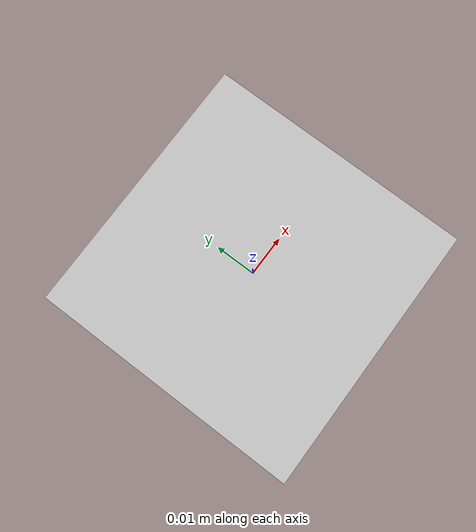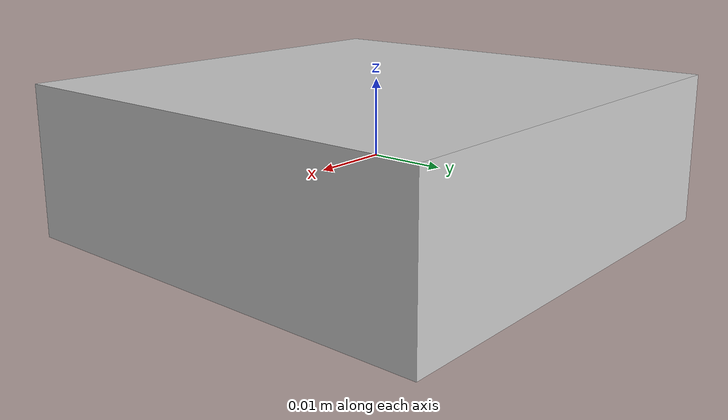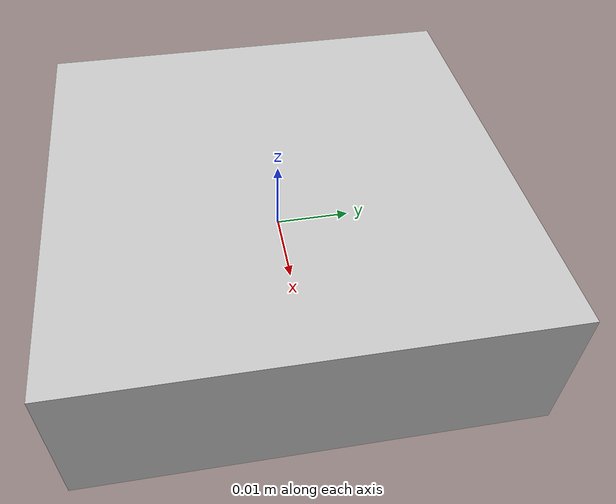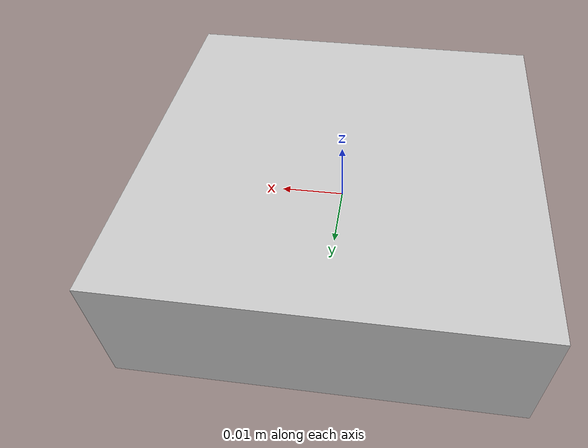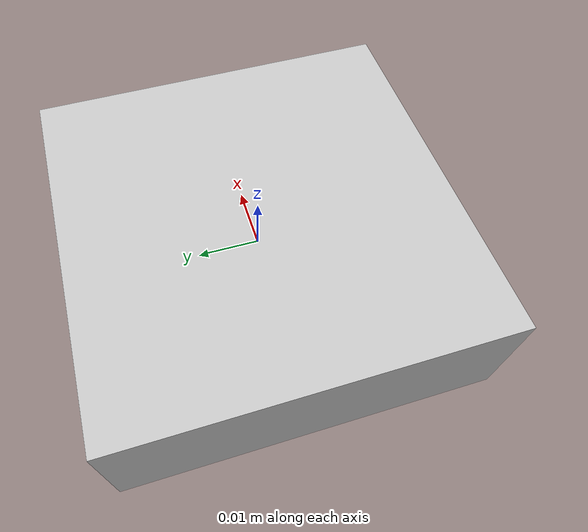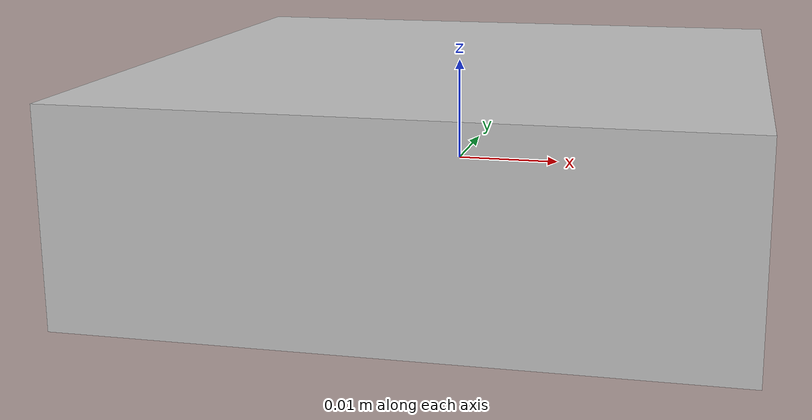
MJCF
<?xml version='1.0' encoding='utf-8'?>
<mujoco model="manipulator_on_base">
  <compiler meshdir="meshes" autolimits="true" />
  <asset>
    <mesh name="manipulator_on_base" file="manipulator_on_base.stl" />
  </asset>
  <worldbody>
    <body name="manipulator_on_base" pos="0.000000 0.000000 0.000000">
      <inertial pos="0.000000 0.000000 0.000000" mass="0.090000" diaginertia="3.000000e-05 3.000000e-05 5.400000e-05" />
      <geom type="mesh" mesh="manipulator_on_base" rgba="0.8 0.8 0.8 1" />
    </body>
  </worldbody>
</mujoco>
